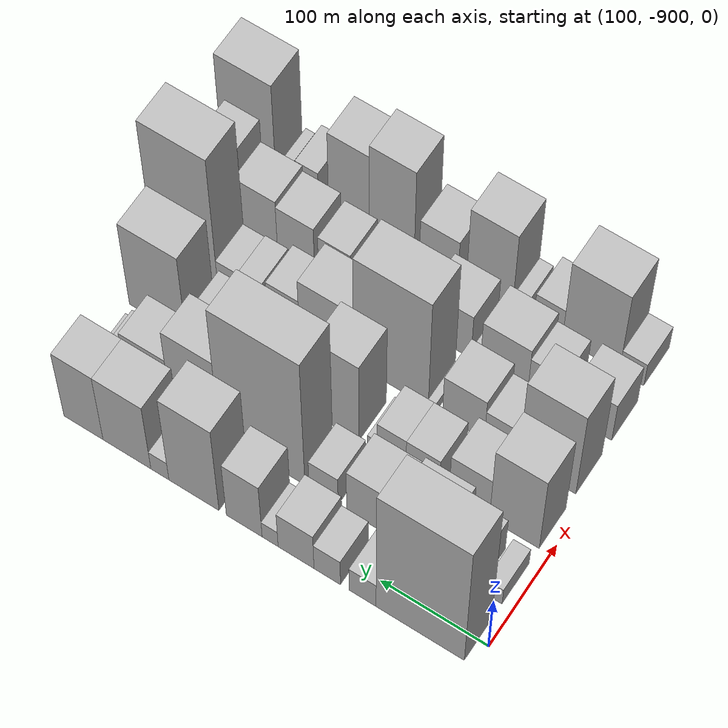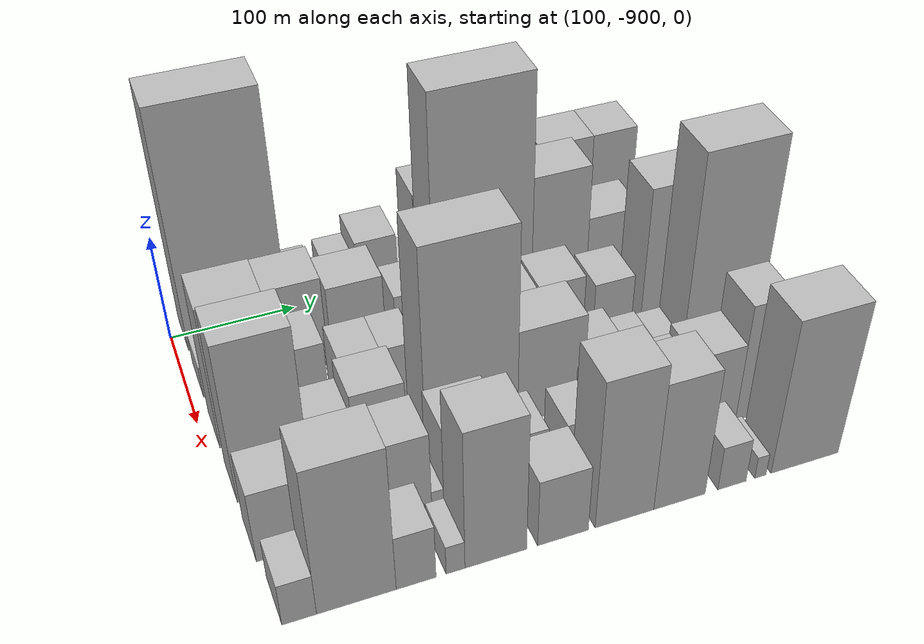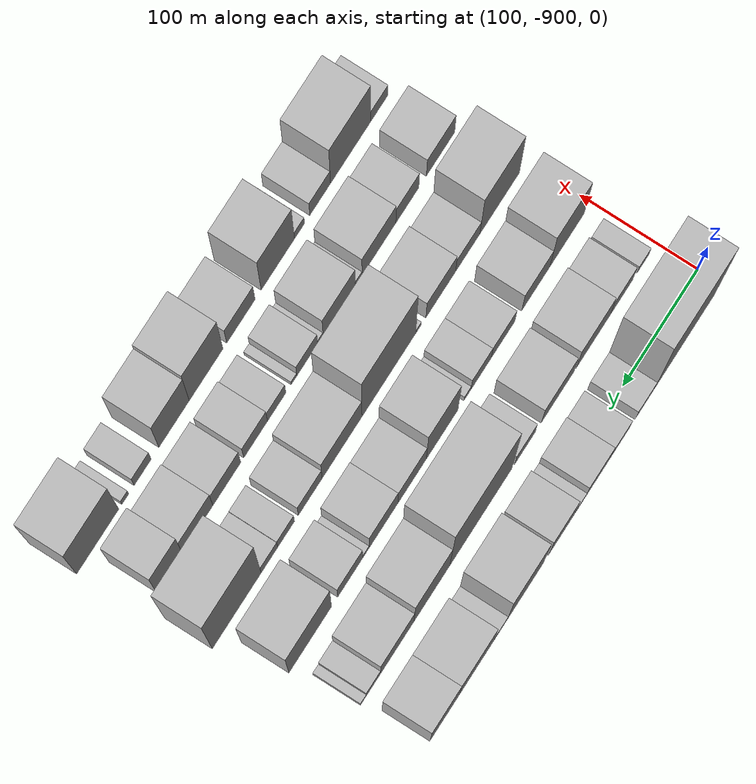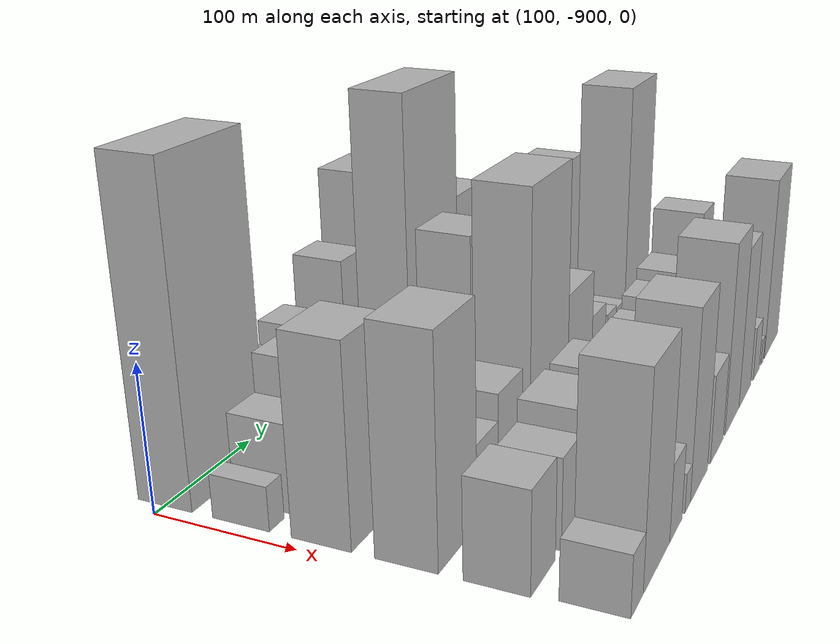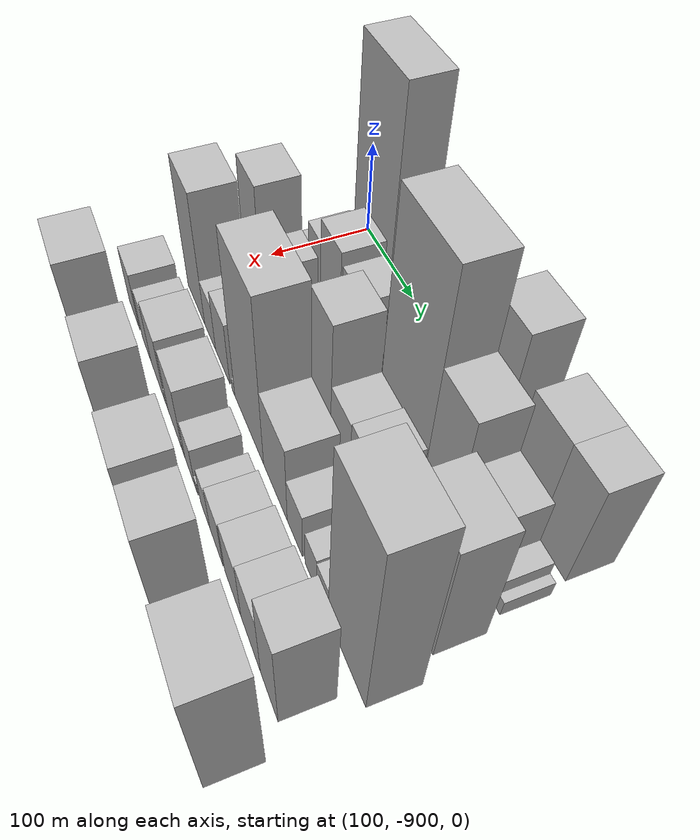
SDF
<sdf version="1.6">
 <world name="default">
  <model name="building_1">
   <static>1</static>
   <pose>100.0000 -849.4702 0 0.000000 0.000000 0.000000</pose>
   <link name="link">
    <pose>0 0 111.00 0 0 0</pose>
    <collision name="collision"><geometry><box><size>40.0000 81.0596 222.0000</size></box></geometry></collision>
    <visual name="visual">
     <cast_shadows>0</cast_shadows>
     <geometry><box><size>40.0000 81.0596 222.0000</size></box></geometry>
     <material>
      <script>
       <uri>model://HANNAS_wall/materials/scripts</uri>
       <uri>model://HANNAS_wall/materials/textures</uri>
       <name>vrc/HANNAS_wall</name>
      </script>
     </material>
    </visual>
   </link>
  </model>
  <model name="building_2">
   <static>1</static>
   <pose>100.0000 -796.4817 0 0.000000 0.000000 0.000000</pose>
   <link name="link">
    <pose>0 0 22.50 0 0 0</pose>
    <collision name="collision"><geometry><box><size>40.0000 24.9173 45.0000</size></box></geometry></collision>
    <visual name="visual">
     <cast_shadows>0</cast_shadows>
     <geometry><box><size>40.0000 24.9173 45.0000</size></box></geometry>
     <material>
      <script>
       <uri>model://HANNAS_wall/materials/scripts</uri>
       <uri>model://HANNAS_wall/materials/textures</uri>
       <name>vrc/HANNAS_wall</name>
      </script>
     </material>
    </visual>
   </link>
  </model>
  <model name="building_3">
   <static>1</static>
   <pose>100.0000 -763.6660 0 0.000000 0.000000 0.000000</pose>
   <link name="link">
    <pose>0 0 24.00 0 0 0</pose>
    <collision name="collision"><geometry><box><size>40.0000 24.7142 48.0000</size></box></geometry></collision>
    <visual name="visual">
     <cast_shadows>0</cast_shadows>
     <geometry><box><size>40.0000 24.7142 48.0000</size></box></geometry>
     <material>
      <script>
       <uri>model://HANNAS_wall/materials/scripts</uri>
       <uri>model://HANNAS_wall/materials/textures</uri>
       <name>vrc/HANNAS_wall</name>
      </script>
     </material>
    </visual>
   </link>
  </model>
  <model name="building_4">
   <static>1</static>
   <pose>100.0000 -734.4835 0 0.000000 0.000000 0.000000</pose>
   <link name="link">
    <pose>0 0 33.00 0 0 0</pose>
    <collision name="collision"><geometry><box><size>40.0000 33.6508 66.0000</size></box></geometry></collision>
    <visual name="visual">
     <cast_shadows>0</cast_shadows>
     <geometry><box><size>40.0000 33.6508 66.0000</size></box></geometry>
     <material>
      <script>
       <uri>model://HANNAS_wall/materials/scripts</uri>
       <uri>model://HANNAS_wall/materials/textures</uri>
       <name>vrc/HANNAS_wall</name>
      </script>
     </material>
    </visual>
   </link>
  </model>
  <model name="building_5">
   <static>1</static>
   <pose>100.0000 -710.1181 0 0.000000 0.000000 0.000000</pose>
   <link name="link">
    <pose>0 0 15.00 0 0 0</pose>
    <collision name="collision"><geometry><box><size>40.0000 15.0800 30.0000</size></box></geometry></collision>
    <visual name="visual">
     <cast_shadows>0</cast_shadows>
     <geometry><box><size>40.0000 15.0800 30.0000</size></box></geometry>
     <material>
      <script>
       <uri>model://HANNAS_wall/materials/scripts</uri>
       <uri>model://HANNAS_wall/materials/textures</uri>
       <name>vrc/HANNAS_wall</name>
      </script>
     </material>
    </visual>
   </link>
  </model>
  <model name="building_6">
   <static>1</static>
   <pose>100.0000 -685.6274 0 0.000000 0.000000 0.000000</pose>
   <link name="link">
    <pose>0 0 49.50 0 0 0</pose>
    <collision name="collision"><geometry><box><size>40.0000 33.9013 99.0000</size></box></geometry></collision>
    <visual name="visual">
     <cast_shadows>0</cast_shadows>
     <geometry><box><size>40.0000 33.9013 99.0000</size></box></geometry>
     <material>
      <script>
       <uri>model://HANNAS_wall/materials/scripts</uri>
       <uri>model://HANNAS_wall/materials/textures</uri>
       <name>vrc/HANNAS_wall</name>
      </script>
     </material>
    </visual>
   </link>
  </model>
  <model name="building_7">
   <static>1</static>
   <pose>100.0000 -637.7286 0 0.000000 0.000000 0.000000</pose>
   <link name="link">
    <pose>0 0 76.50 0 0 0</pose>
    <collision name="collision"><geometry><box><size>40.0000 47.8963 153.0000</size></box></geometry></collision>
    <visual name="visual">
     <cast_shadows>0</cast_shadows>
     <geometry><box><size>40.0000 47.8963 153.0000</size></box></geometry>
     <material>
      <script>
       <uri>model://HANNAS_wall/materials/scripts</uri>
       <uri>model://HANNAS_wall/materials/textures</uri>
       <name>vrc/HANNAS_wall</name>
      </script>
     </material>
    </visual>
   </link>
  </model>
  <model name="building_8">
   <static>1</static>
   <pose>100.0000 -605.0960 0 0.000000 0.000000 0.000000</pose>
   <link name="link">
    <pose>0 0 16.50 0 0 0</pose>
    <collision name="collision"><geometry><box><size>40.0000 17.3690 33.0000</size></box></geometry></collision>
    <visual name="visual">
     <cast_shadows>0</cast_shadows>
     <geometry><box><size>40.0000 17.3690 33.0000</size></box></geometry>
     <material>
      <script>
       <uri>model://HANNAS_wall/materials/scripts</uri>
       <uri>model://HANNAS_wall/materials/textures</uri>
       <name>vrc/HANNAS_wall</name>
      </script>
     </material>
    </visual>
   </link>
  </model>
  <model name="building_9">
   <static>1</static>
   <pose>100.0000 -573.2728 0 0.000000 0.000000 0.000000</pose>
   <link name="link">
    <pose>0 0 58.50 0 0 0</pose>
    <collision name="collision"><geometry><box><size>40.0000 46.2772 117.0000</size></box></geometry></collision>
    <visual name="visual">
     <cast_shadows>0</cast_shadows>
     <geometry><box><size>40.0000 46.2772 117.0000</size></box></geometry>
     <material>
      <script>
       <uri>model://HANNAS_wall/materials/scripts</uri>
       <uri>model://HANNAS_wall/materials/textures</uri>
       <name>vrc/HANNAS_wall</name>
      </script>
     </material>
    </visual>
   </link>
  </model>
  <model name="building_10">
   <static>1</static>
   <pose>100.0000 -531.0758 0 0.000000 0.000000 0.000000</pose>
   <link name="link">
    <pose>0 0 58.50 0 0 0</pose>
    <collision name="collision"><geometry><box><size>40.0000 38.1168 117.0000</size></box></geometry></collision>
    <visual name="visual">
     <cast_shadows>0</cast_shadows>
     <geometry><box><size>40.0000 38.1168 117.0000</size></box></geometry>
     <material>
      <script>
       <uri>model://HANNAS_wall/materials/scripts</uri>
       <uri>model://HANNAS_wall/materials/textures</uri>
       <name>vrc/HANNAS_wall</name>
      </script>
     </material>
    </visual>
   </link>
  </model>
  <model name="building_60">
   <static>1</static>
   <pose>155.0000 -882.0283 0 0.000000 0.000000 0.000000</pose>
   <link name="link">
    <pose>0 0 15.00 0 0 0</pose>
    <collision name="collision"><geometry><box><size>40.0000 15.9435 30.0000</size></box></geometry></collision>
    <visual name="visual">
     <cast_shadows>0</cast_shadows>
     <geometry><box><size>40.0000 15.9435 30.0000</size></box></geometry>
     <material>
      <script>
       <uri>model://HANNAS_wall/materials/scripts</uri>
       <uri>model://HANNAS_wall/materials/textures</uri>
       <name>vrc/HANNAS_wall</name>
      </script>
     </material>
    </visual>
   </link>
  </model>
  <model name="building_61">
   <static>1</static>
   <pose>155.0000 -852.9498 0 0.000000 0.000000 0.000000</pose>
   <link name="link">
    <pose>0 0 30.00 0 0 0</pose>
    <collision name="collision"><geometry><box><size>40.0000 30.2134 60.0000</size></box></geometry></collision>
    <visual name="visual">
     <cast_shadows>0</cast_shadows>
     <geometry><box><size>40.0000 30.2134 60.0000</size></box></geometry>
     <material>
      <script>
       <uri>model://HANNAS_wall/materials/scripts</uri>
       <uri>model://HANNAS_wall/materials/textures</uri>
       <name>vrc/HANNAS_wall</name>
      </script>
     </material>
    </visual>
   </link>
  </model>
  <model name="building_62">
   <static>1</static>
   <pose>155.0000 -815.1934 0 0.000000 0.000000 0.000000</pose>
   <link name="link">
    <pose>0 0 43.50 0 0 0</pose>
    <collision name="collision"><geometry><box><size>40.0000 45.2995 87.0000</size></box></geometry></collision>
    <visual name="visual">
     <cast_shadows>0</cast_shadows>
     <geometry><box><size>40.0000 45.2995 87.0000</size></box></geometry>
     <material>
      <script>
       <uri>model://HANNAS_wall/materials/scripts</uri>
       <uri>model://HANNAS_wall/materials/textures</uri>
       <name>vrc/HANNAS_wall</name>
      </script>
     </material>
    </visual>
   </link>
  </model>
  <model name="building_63">
   <static>1</static>
   <pose>155.0000 -767.6770 0 0.000000 0.000000 0.000000</pose>
   <link name="link">
    <pose>0 0 37.50 0 0 0</pose>
    <collision name="collision"><geometry><box><size>40.0000 43.7331 75.0000</size></box></geometry></collision>
    <visual name="visual">
     <cast_shadows>0</cast_shadows>
     <geometry><box><size>40.0000 43.7331 75.0000</size></box></geometry>
     <material>
      <script>
       <uri>model://HANNAS_wall/materials/scripts</uri>
       <uri>model://HANNAS_wall/materials/textures</uri>
       <name>vrc/HANNAS_wall</name>
      </script>
     </material>
    </visual>
   </link>
  </model>
  <model name="building_64">
   <static>1</static>
   <pose>155.0000 -724.0983 0 0.000000 0.000000 0.000000</pose>
   <link name="link">
    <pose>0 0 25.50 0 0 0</pose>
    <collision name="collision"><geometry><box><size>40.0000 27.4242 51.0000</size></box></geometry></collision>
    <visual name="visual">
     <cast_shadows>0</cast_shadows>
     <geometry><box><size>40.0000 27.4242 51.0000</size></box></geometry>
     <material>
      <script>
       <uri>model://HANNAS_wall/materials/scripts</uri>
       <uri>model://HANNAS_wall/materials/textures</uri>
       <name>vrc/HANNAS_wall</name>
      </script>
     </material>
    </visual>
   </link>
  </model>
  <model name="building_65">
   <static>1</static>
   <pose>155.0000 -665.3997 0 0.000000 0.000000 0.000000</pose>
   <link name="link">
    <pose>0 0 112.50 0 0 0</pose>
    <collision name="collision"><geometry><box><size>40.0000 81.9730 225.0000</size></box></geometry></collision>
    <visual name="visual">
     <cast_shadows>0</cast_shadows>
     <geometry><box><size>40.0000 81.9730 225.0000</size></box></geometry>
     <material>
      <script>
       <uri>model://HANNAS_wall/materials/scripts</uri>
       <uri>model://HANNAS_wall/materials/textures</uri>
       <name>vrc/HANNAS_wall</name>
      </script>
     </material>
    </visual>
   </link>
  </model>
  <model name="building_66">
   <static>1</static>
   <pose>155.0000 -600.7089 0 0.000000 0.000000 0.000000</pose>
   <link name="link">
    <pose>0 0 66.00 0 0 0</pose>
    <collision name="collision"><geometry><box><size>40.0000 47.4087 132.0000</size></box></geometry></collision>
    <visual name="visual">
     <cast_shadows>0</cast_shadows>
     <geometry><box><size>40.0000 47.4087 132.0000</size></box></geometry>
     <material>
      <script>
       <uri>model://HANNAS_wall/materials/scripts</uri>
       <uri>model://HANNAS_wall/materials/textures</uri>
       <name>vrc/HANNAS_wall</name>
      </script>
     </material>
    </visual>
   </link>
  </model>
  <model name="building_67">
   <static>1</static>
   <pose>155.0000 -555.1314 0 0.000000 0.000000 0.000000</pose>
   <link name="link">
    <pose>0 0 40.50 0 0 0</pose>
    <collision name="collision"><geometry><box><size>40.0000 43.7464 81.0000</size></box></geometry></collision>
    <visual name="visual">
     <cast_shadows>0</cast_shadows>
     <geometry><box><size>40.0000 43.7464 81.0000</size></box></geometry>
     <material>
      <script>
       <uri>model://HANNAS_wall/materials/scripts</uri>
       <uri>model://HANNAS_wall/materials/textures</uri>
       <name>vrc/HANNAS_wall</name>
      </script>
     </material>
    </visual>
   </link>
  </model>
  <model name="building_68">
   <static>1</static>
   <pose>155.0000 -523.9585 0 0.000000 0.000000 0.000000</pose>
   <link name="link">
    <pose>0 0 16.50 0 0 0</pose>
    <collision name="collision"><geometry><box><size>40.0000 18.5993 33.0000</size></box></geometry></collision>
    <visual name="visual">
     <cast_shadows>0</cast_shadows>
     <geometry><box><size>40.0000 18.5993 33.0000</size></box></geometry>
     <material>
      <script>
       <uri>model://HANNAS_wall/materials/scripts</uri>
       <uri>model://HANNAS_wall/materials/textures</uri>
       <name>vrc/HANNAS_wall</name>
      </script>
     </material>
    </visual>
   </link>
  </model>
  <model name="building_69">
   <static>1</static>
   <pose>155.0000 -510.8454 0 0.000000 0.000000 0.000000</pose>
   <link name="link">
    <pose>0 0 9.00 0 0 0</pose>
    <collision name="collision"><geometry><box><size>40.0000 7.6270 18.0000</size></box></geometry></collision>
    <visual name="visual">
     <cast_shadows>0</cast_shadows>
     <geometry><box><size>40.0000 7.6270 18.0000</size></box></geometry>
     <material>
      <script>
       <uri>model://HANNAS_wall/materials/scripts</uri>
       <uri>model://HANNAS_wall/materials/textures</uri>
       <name>vrc/HANNAS_wall</name>
      </script>
     </material>
    </visual>
   </link>
  </model>
  <model name="building_112">
   <static>1</static>
   <pose>210.0000 -867.0204 0 0.000000 0.000000 0.000000</pose>
   <link name="link">
    <pose>0 0 66.00 0 0 0</pose>
    <collision name="collision"><geometry><box><size>40.0000 45.9593 132.0000</size></box></geometry></collision>
    <visual name="visual">
     <cast_shadows>0</cast_shadows>
     <geometry><box><size>40.0000 45.9593 132.0000</size></box></geometry>
     <material>
      <script>
       <uri>model://HANNAS_wall/materials/scripts</uri>
       <uri>model://HANNAS_wall/materials/textures</uri>
       <name>vrc/HANNAS_wall</name>
      </script>
     </material>
    </visual>
   </link>
  </model>
  <model name="building_113">
   <static>1</static>
   <pose>210.0000 -825.2384 0 0.000000 0.000000 0.000000</pose>
   <link name="link">
    <pose>0 0 37.50 0 0 0</pose>
    <collision name="collision"><geometry><box><size>40.0000 37.6047 75.0000</size></box></geometry></collision>
    <visual name="visual">
     <cast_shadows>0</cast_shadows>
     <geometry><box><size>40.0000 37.6047 75.0000</size></box></geometry>
     <material>
      <script>
       <uri>model://HANNAS_wall/materials/scripts</uri>
       <uri>model://HANNAS_wall/materials/textures</uri>
       <name>vrc/HANNAS_wall</name>
      </script>
     </material>
    </visual>
   </link>
  </model>
  <model name="building_114">
   <static>1</static>
   <pose>210.0000 -781.6343 0 0.000000 0.000000 0.000000</pose>
   <link name="link">
    <pose>0 0 27.00 0 0 0</pose>
    <collision name="collision"><geometry><box><size>40.0000 31.6035 54.0000</size></box></geometry></collision>
    <visual name="visual">
     <cast_shadows>0</cast_shadows>
     <geometry><box><size>40.0000 31.6035 54.0000</size></box></geometry>
     <material>
      <script>
       <uri>model://HANNAS_wall/materials/scripts</uri>
       <uri>model://HANNAS_wall/materials/textures</uri>
       <name>vrc/HANNAS_wall</name>
      </script>
     </material>
    </visual>
   </link>
  </model>
  <model name="building_115">
   <static>1</static>
   <pose>210.0000 -752.2798 0 0.000000 0.000000 0.000000</pose>
   <link name="link">
    <pose>0 0 27.00 0 0 0</pose>
    <collision name="collision"><geometry><box><size>40.0000 27.1055 54.0000</size></box></geometry></collision>
    <visual name="visual">
     <cast_shadows>0</cast_shadows>
     <geometry><box><size>40.0000 27.1055 54.0000</size></box></geometry>
     <material>
      <script>
       <uri>model://HANNAS_wall/materials/scripts</uri>
       <uri>model://HANNAS_wall/materials/textures</uri>
       <name>vrc/HANNAS_wall</name>
      </script>
     </material>
    </visual>
   </link>
  </model>
  <model name="building_116">
   <static>1</static>
   <pose>210.0000 -734.1726 0 0.000000 0.000000 0.000000</pose>
   <link name="link">
    <pose>0 0 10.50 0 0 0</pose>
    <collision name="collision"><geometry><box><size>40.0000 9.1089 21.0000</size></box></geometry></collision>
    <visual name="visual">
     <cast_shadows>0</cast_shadows>
     <geometry><box><size>40.0000 9.1089 21.0000</size></box></geometry>
     <material>
      <script>
       <uri>model://HANNAS_wall/materials/scripts</uri>
       <uri>model://HANNAS_wall/materials/textures</uri>
       <name>vrc/HANNAS_wall</name>
      </script>
     </material>
    </visual>
   </link>
  </model>
  <model name="building_117">
   <static>1</static>
   <pose>210.0000 -700.6305 0 0.000000 0.000000 0.000000</pose>
   <link name="link">
    <pose>0 0 69.00 0 0 0</pose>
    <collision name="collision"><geometry><box><size>40.0000 41.9753 138.0000</size></box></geometry></collision>
    <visual name="visual">
     <cast_shadows>0</cast_shadows>
     <geometry><box><size>40.0000 41.9753 138.0000</size></box></geometry>
     <material>
      <script>
       <uri>model://HANNAS_wall/materials/scripts</uri>
       <uri>model://HANNAS_wall/materials/textures</uri>
       <name>vrc/HANNAS_wall</name>
      </script>
     </material>
    </visual>
   </link>
  </model>
  <model name="building_118">
   <static>1</static>
   <pose>210.0000 -660.8304 0 0.000000 0.000000 0.000000</pose>
   <link name="link">
    <pose>0 0 36.00 0 0 0</pose>
    <collision name="collision"><geometry><box><size>40.0000 37.6250 72.0000</size></box></geometry></collision>
    <visual name="visual">
     <cast_shadows>0</cast_shadows>
     <geometry><box><size>40.0000 37.6250 72.0000</size></box></geometry>
     <material>
      <script>
       <uri>model://HANNAS_wall/materials/scripts</uri>
       <uri>model://HANNAS_wall/materials/textures</uri>
       <name>vrc/HANNAS_wall</name>
      </script>
     </material>
    </visual>
   </link>
  </model>
  <model name="building_119">
   <static>1</static>
   <pose>210.0000 -623.1303 0 0.000000 0.000000 0.000000</pose>
   <link name="link">
    <pose>0 0 37.50 0 0 0</pose>
    <collision name="collision"><geometry><box><size>40.0000 37.7752 75.0000</size></box></geometry></collision>
    <visual name="visual">
     <cast_shadows>0</cast_shadows>
     <geometry><box><size>40.0000 37.7752 75.0000</size></box></geometry>
     <material>
      <script>
       <uri>model://HANNAS_wall/materials/scripts</uri>
       <uri>model://HANNAS_wall/materials/textures</uri>
       <name>vrc/HANNAS_wall</name>
      </script>
     </material>
    </visual>
   </link>
  </model>
  <model name="building_120">
   <static>1</static>
   <pose>210.0000 -599.9758 0 0.000000 0.000000 0.000000</pose>
   <link name="link">
    <pose>0 0 9.00 0 0 0</pose>
    <collision name="collision"><geometry><box><size>40.0000 8.5337 18.0000</size></box></geometry></collision>
    <visual name="visual">
     <cast_shadows>0</cast_shadows>
     <geometry><box><size>40.0000 8.5337 18.0000</size></box></geometry>
     <material>
      <script>
       <uri>model://HANNAS_wall/materials/scripts</uri>
       <uri>model://HANNAS_wall/materials/textures</uri>
       <name>vrc/HANNAS_wall</name>
      </script>
     </material>
    </visual>
   </link>
  </model>
  <model name="building_121">
   <static>1</static>
   <pose>210.0000 -579.2634 0 0.000000 0.000000 0.000000</pose>
   <link name="link">
    <pose>0 0 31.50 0 0 0</pose>
    <collision name="collision"><geometry><box><size>40.0000 32.8912 63.0000</size></box></geometry></collision>
    <visual name="visual">
     <cast_shadows>0</cast_shadows>
     <geometry><box><size>40.0000 32.8912 63.0000</size></box></geometry>
     <material>
      <script>
       <uri>model://HANNAS_wall/materials/scripts</uri>
       <uri>model://HANNAS_wall/materials/textures</uri>
       <name>vrc/HANNAS_wall</name>
      </script>
     </material>
    </visual>
   </link>
  </model>
  <model name="building_122">
   <static>1</static>
   <pose>210.0000 -526.8572 0 0.000000 0.000000 0.000000</pose>
   <link name="link">
    <pose>0 0 70.50 0 0 0</pose>
    <collision name="collision"><geometry><box><size>40.0000 55.9212 141.0000</size></box></geometry></collision>
    <visual name="visual">
     <cast_shadows>0</cast_shadows>
     <geometry><box><size>40.0000 55.9212 141.0000</size></box></geometry>
     <material>
      <script>
       <uri>model://HANNAS_wall/materials/scripts</uri>
       <uri>model://HANNAS_wall/materials/textures</uri>
       <name>vrc/HANNAS_wall</name>
      </script>
     </material>
    </visual>
   </link>
  </model>
  <model name="building_164">
   <static>1</static>
   <pose>265.0000 -863.5892 0 0.000000 0.000000 0.000000</pose>
   <link name="link">
    <pose>0 0 73.50 0 0 0</pose>
    <collision name="collision"><geometry><box><size>40.0000 52.8216 147.0000</size></box></geometry></collision>
    <visual name="visual">
     <cast_shadows>0</cast_shadows>
     <geometry><box><size>40.0000 52.8216 147.0000</size></box></geometry>
     <material>
      <script>
       <uri>model://HANNAS_wall/materials/scripts</uri>
       <uri>model://HANNAS_wall/materials/textures</uri>
       <name>vrc/HANNAS_wall</name>
      </script>
     </material>
    </visual>
   </link>
  </model>
  <model name="building_165">
   <static>1</static>
   <pose>265.0000 -821.0068 0 0.000000 0.000000 0.000000</pose>
   <link name="link">
    <pose>0 0 27.00 0 0 0</pose>
    <collision name="collision"><geometry><box><size>40.0000 32.3433 54.0000</size></box></geometry></collision>
    <visual name="visual">
     <cast_shadows>0</cast_shadows>
     <geometry><box><size>40.0000 32.3433 54.0000</size></box></geometry>
     <material>
      <script>
       <uri>model://HANNAS_wall/materials/scripts</uri>
       <uri>model://HANNAS_wall/materials/textures</uri>
       <name>vrc/HANNAS_wall</name>
      </script>
     </material>
    </visual>
   </link>
  </model>
  <model name="building_166">
   <static>1</static>
   <pose>265.0000 -785.0643 0 0.000000 0.000000 0.000000</pose>
   <link name="link">
    <pose>0 0 36.00 0 0 0</pose>
    <collision name="collision"><geometry><box><size>40.0000 39.5417 72.0000</size></box></geometry></collision>
    <visual name="visual">
     <cast_shadows>0</cast_shadows>
     <geometry><box><size>40.0000 39.5417 72.0000</size></box></geometry>
     <material>
      <script>
       <uri>model://HANNAS_wall/materials/scripts</uri>
       <uri>model://HANNAS_wall/materials/textures</uri>
       <name>vrc/HANNAS_wall</name>
      </script>
     </material>
    </visual>
   </link>
  </model>
  <model name="building_167">
   <static>1</static>
   <pose>265.0000 -755.5915 0 0.000000 0.000000 0.000000</pose>
   <link name="link">
    <pose>0 0 7.50 0 0 0</pose>
    <collision name="collision"><geometry><box><size>40.0000 7.4040 15.0000</size></box></geometry></collision>
    <visual name="visual">
     <cast_shadows>0</cast_shadows>
     <geometry><box><size>40.0000 7.4040 15.0000</size></box></geometry>
     <material>
      <script>
       <uri>model://HANNAS_wall/materials/scripts</uri>
       <uri>model://HANNAS_wall/materials/textures</uri>
       <name>vrc/HANNAS_wall</name>
      </script>
     </material>
    </visual>
   </link>
  </model>
  <model name="building_168">
   <static>1</static>
   <pose>265.0000 -716.2300 0 0.000000 0.000000 0.000000</pose>
   <link name="link">
    <pose>0 0 93.00 0 0 0</pose>
    <collision name="collision"><geometry><box><size>40.0000 71.3191 186.0000</size></box></geometry></collision>
    <visual name="visual">
     <cast_shadows>0</cast_shadows>
     <geometry><box><size>40.0000 71.3191 186.0000</size></box></geometry>
     <material>
      <script>
       <uri>model://HANNAS_wall/materials/scripts</uri>
       <uri>model://HANNAS_wall/materials/textures</uri>
       <name>vrc/HANNAS_wall</name>
      </script>
     </material>
    </visual>
   </link>
  </model>
  <model name="building_169">
   <static>1</static>
   <pose>265.0000 -654.2969 0 0.000000 0.000000 0.000000</pose>
   <link name="link">
    <pose>0 0 45.00 0 0 0</pose>
    <collision name="collision"><geometry><box><size>40.0000 52.5471 90.0000</size></box></geometry></collision>
    <visual name="visual">
     <cast_shadows>0</cast_shadows>
     <geometry><box><size>40.0000 52.5471 90.0000</size></box></geometry>
     <material>
      <script>
       <uri>model://HANNAS_wall/materials/scripts</uri>
       <uri>model://HANNAS_wall/materials/textures</uri>
       <name>vrc/HANNAS_wall</name>
      </script>
     </material>
    </visual>
   </link>
  </model>
  <model name="building_170">
   <static>1</static>
   <pose>265.0000 -612.3860 0 0.000000 0.000000 0.000000</pose>
   <link name="link">
    <pose>0 0 27.00 0 0 0</pose>
    <collision name="collision"><geometry><box><size>40.0000 31.2746 54.0000</size></box></geometry></collision>
    <visual name="visual">
     <cast_shadows>0</cast_shadows>
     <geometry><box><size>40.0000 31.2746 54.0000</size></box></geometry>
     <material>
      <script>
       <uri>model://HANNAS_wall/materials/scripts</uri>
       <uri>model://HANNAS_wall/materials/textures</uri>
       <name>vrc/HANNAS_wall</name>
      </script>
     </material>
    </visual>
   </link>
  </model>
  <model name="building_171">
   <static>1</static>
   <pose>265.0000 -580.7280 0 0.000000 0.000000 0.000000</pose>
   <link name="link">
    <pose>0 0 21.00 0 0 0</pose>
    <collision name="collision"><geometry><box><size>40.0000 22.0416 42.0000</size></box></geometry></collision>
    <visual name="visual">
     <cast_shadows>0</cast_shadows>
     <geometry><box><size>40.0000 22.0416 42.0000</size></box></geometry>
     <material>
      <script>
       <uri>model://HANNAS_wall/materials/scripts</uri>
       <uri>model://HANNAS_wall/materials/textures</uri>
       <name>vrc/HANNAS_wall</name>
      </script>
     </material>
    </visual>
   </link>
  </model>
  <model name="building_172">
   <static>1</static>
   <pose>265.0000 -558.8055 0 0.000000 0.000000 0.000000</pose>
   <link name="link">
    <pose>0 0 19.50 0 0 0</pose>
    <collision name="collision"><geometry><box><size>40.0000 21.8033 39.0000</size></box></geometry></collision>
    <visual name="visual">
     <cast_shadows>0</cast_shadows>
     <geometry><box><size>40.0000 21.8033 39.0000</size></box></geometry>
     <material>
      <script>
       <uri>model://HANNAS_wall/materials/scripts</uri>
       <uri>model://HANNAS_wall/materials/textures</uri>
       <name>vrc/HANNAS_wall</name>
      </script>
     </material>
    </visual>
   </link>
  </model>
  <model name="building_173">
   <static>1</static>
   <pose>265.0000 -515.9631 0 0.000000 0.000000 0.000000</pose>
   <link name="link">
    <pose>0 0 103.50 0 0 0</pose>
    <collision name="collision"><geometry><box><size>40.0000 63.8814 207.0000</size></box></geometry></collision>
    <visual name="visual">
     <cast_shadows>0</cast_shadows>
     <geometry><box><size>40.0000 63.8814 207.0000</size></box></geometry>
     <material>
      <script>
       <uri>model://HANNAS_wall/materials/scripts</uri>
       <uri>model://HANNAS_wall/materials/textures</uri>
       <name>vrc/HANNAS_wall</name>
      </script>
     </material>
    </visual>
   </link>
  </model>
  <model name="building_220">
   <static>1</static>
   <pose>320.0000 -871.0660 0 0.000000 0.000000 0.000000</pose>
   <link name="link">
    <pose>0 0 33.00 0 0 0</pose>
    <collision name="collision"><geometry><box><size>40.0000 37.8679 66.0000</size></box></geometry></collision>
    <visual name="visual">
     <cast_shadows>0</cast_shadows>
     <geometry><box><size>40.0000 37.8679 66.0000</size></box></geometry>
     <material>
      <script>
       <uri>model://HANNAS_wall/materials/scripts</uri>
       <uri>model://HANNAS_wall/materials/textures</uri>
       <name>vrc/HANNAS_wall</name>
      </script>
     </material>
    </visual>
   </link>
  </model>
  <model name="building_221">
   <static>1</static>
   <pose>320.0000 -826.7842 0 0.000000 0.000000 0.000000</pose>
   <link name="link">
    <pose>0 0 30.00 0 0 0</pose>
    <collision name="collision"><geometry><box><size>40.0000 30.6957 60.0000</size></box></geometry></collision>
    <visual name="visual">
     <cast_shadows>0</cast_shadows>
     <geometry><box><size>40.0000 30.6957 60.0000</size></box></geometry>
     <material>
      <script>
       <uri>model://HANNAS_wall/materials/scripts</uri>
       <uri>model://HANNAS_wall/materials/textures</uri>
       <name>vrc/HANNAS_wall</name>
      </script>
     </material>
    </visual>
   </link>
  </model>
  <model name="building_222">
   <static>1</static>
   <pose>320.0000 -788.9957 0 0.000000 0.000000 0.000000</pose>
   <link name="link">
    <pose>0 0 37.50 0 0 0</pose>
    <collision name="collision"><geometry><box><size>40.0000 44.8815 75.0000</size></box></geometry></collision>
    <visual name="visual">
     <cast_shadows>0</cast_shadows>
     <geometry><box><size>40.0000 44.8815 75.0000</size></box></geometry>
     <material>
      <script>
       <uri>model://HANNAS_wall/materials/scripts</uri>
       <uri>model://HANNAS_wall/materials/textures</uri>
       <name>vrc/HANNAS_wall</name>
      </script>
     </material>
    </visual>
   </link>
  </model>
  <model name="building_223">
   <static>1</static>
   <pose>320.0000 -762.1293 0 0.000000 0.000000 0.000000</pose>
   <link name="link">
    <pose>0 0 9.00 0 0 0</pose>
    <collision name="collision"><geometry><box><size>40.0000 8.8513 18.0000</size></box></geometry></collision>
    <visual name="visual">
     <cast_shadows>0</cast_shadows>
     <geometry><box><size>40.0000 8.8513 18.0000</size></box></geometry>
     <material>
      <script>
       <uri>model://HANNAS_wall/materials/scripts</uri>
       <uri>model://HANNAS_wall/materials/textures</uri>
       <name>vrc/HANNAS_wall</name>
      </script>
     </material>
    </visual>
   </link>
  </model>
  <model name="building_224">
   <static>1</static>
   <pose>320.0000 -736.3522 0 0.000000 0.000000 0.000000</pose>
   <link name="link">
    <pose>0 0 37.50 0 0 0</pose>
    <collision name="collision"><geometry><box><size>40.0000 42.7029 75.0000</size></box></geometry></collision>
    <visual name="visual">
     <cast_shadows>0</cast_shadows>
     <geometry><box><size>40.0000 42.7029 75.0000</size></box></geometry>
     <material>
      <script>
       <uri>model://HANNAS_wall/materials/scripts</uri>
       <uri>model://HANNAS_wall/materials/textures</uri>
       <name>vrc/HANNAS_wall</name>
      </script>
     </material>
    </visual>
   </link>
  </model>
  <model name="building_225">
   <static>1</static>
   <pose>320.0000 -711.4095 0 0.000000 0.000000 0.000000</pose>
   <link name="link">
    <pose>0 0 7.50 0 0 0</pose>
    <collision name="collision"><geometry><box><size>40.0000 7.1824 15.0000</size></box></geometry></collision>
    <visual name="visual">
     <cast_shadows>0</cast_shadows>
     <geometry><box><size>40.0000 7.1824 15.0000</size></box></geometry>
     <material>
      <script>
       <uri>model://HANNAS_wall/materials/scripts</uri>
       <uri>model://HANNAS_wall/materials/textures</uri>
       <name>vrc/HANNAS_wall</name>
      </script>
     </material>
    </visual>
   </link>
  </model>
  <model name="building_226">
   <static>1</static>
   <pose>320.0000 -694.0550 0 0.000000 0.000000 0.000000</pose>
   <link name="link">
    <pose>0 0 24.00 0 0 0</pose>
    <collision name="collision"><geometry><box><size>40.0000 27.5266 48.0000</size></box></geometry></collision>
    <visual name="visual">
     <cast_shadows>0</cast_shadows>
     <geometry><box><size>40.0000 27.5266 48.0000</size></box></geometry>
     <material>
      <script>
       <uri>model://HANNAS_wall/materials/scripts</uri>
       <uri>model://HANNAS_wall/materials/textures</uri>
       <name>vrc/HANNAS_wall</name>
      </script>
     </material>
    </visual>
   </link>
  </model>
  <model name="building_227">
   <static>1</static>
   <pose>320.0000 -676.5863 0 0.000000 0.000000 0.000000</pose>
   <link name="link">
    <pose>0 0 7.50 0 0 0</pose>
    <collision name="collision"><geometry><box><size>40.0000 7.4108 15.0000</size></box></geometry></collision>
    <visual name="visual">
     <cast_shadows>0</cast_shadows>
     <geometry><box><size>40.0000 7.4108 15.0000</size></box></geometry>
     <material>
      <script>
       <uri>model://HANNAS_wall/materials/scripts</uri>
       <uri>model://HANNAS_wall/materials/textures</uri>
       <name>vrc/HANNAS_wall</name>
      </script>
     </material>
    </visual>
   </link>
  </model>
  <model name="building_228">
   <static>1</static>
   <pose>320.0000 -653.7818 0 0.000000 0.000000 0.000000</pose>
   <link name="link">
    <pose>0 0 22.50 0 0 0</pose>
    <collision name="collision"><geometry><box><size>40.0000 24.1982 45.0000</size></box></geometry></collision>
    <visual name="visual">
     <cast_shadows>0</cast_shadows>
     <geometry><box><size>40.0000 24.1982 45.0000</size></box></geometry>
     <material>
      <script>
       <uri>model://HANNAS_wall/materials/scripts</uri>
       <uri>model://HANNAS_wall/materials/textures</uri>
       <name>vrc/HANNAS_wall</name>
      </script>
     </material>
    </visual>
   </link>
  </model>
  <model name="building_229">
   <static>1</static>
   <pose>320.0000 -626.0792 0 0.000000 0.000000 0.000000</pose>
   <link name="link">
    <pose>0 0 28.50 0 0 0</pose>
    <collision name="collision"><geometry><box><size>40.0000 31.2071 57.0000</size></box></geometry></collision>
    <visual name="visual">
     <cast_shadows>0</cast_shadows>
     <geometry><box><size>40.0000 31.2071 57.0000</size></box></geometry>
     <material>
      <script>
       <uri>model://HANNAS_wall/materials/scripts</uri>
       <uri>model://HANNAS_wall/materials/textures</uri>
       <name>vrc/HANNAS_wall</name>
      </script>
     </material>
    </visual>
   </link>
  </model>
  <model name="building_230">
   <static>1</static>
   <pose>320.0000 -588.2155 0 0.000000 0.000000 0.000000</pose>
   <link name="link">
    <pose>0 0 33.00 0 0 0</pose>
    <collision name="collision"><geometry><box><size>40.0000 36.5202 66.0000</size></box></geometry></collision>
    <visual name="visual">
     <cast_shadows>0</cast_shadows>
     <geometry><box><size>40.0000 36.5202 66.0000</size></box></geometry>
     <material>
      <script>
       <uri>model://HANNAS_wall/materials/scripts</uri>
       <uri>model://HANNAS_wall/materials/textures</uri>
       <name>vrc/HANNAS_wall</name>
      </script>
     </material>
    </visual>
   </link>
  </model>
  <model name="building_231">
   <static>1</static>
   <pose>320.0000 -549.8197 0 0.000000 0.000000 0.000000</pose>
   <link name="link">
    <pose>0 0 37.50 0 0 0</pose>
    <collision name="collision"><geometry><box><size>40.0000 40.2715 75.0000</size></box></geometry></collision>
    <visual name="visual">
     <cast_shadows>0</cast_shadows>
     <geometry><box><size>40.0000 40.2715 75.0000</size></box></geometry>
     <material>
      <script>
       <uri>model://HANNAS_wall/materials/scripts</uri>
       <uri>model://HANNAS_wall/materials/textures</uri>
       <name>vrc/HANNAS_wall</name>
      </script>
     </material>
    </visual>
   </link>
  </model>
  <model name="building_232">
   <static>1</static>
   <pose>320.0000 -512.9352 0 0.000000 0.000000 0.000000</pose>
   <link name="link">
    <pose>0 0 55.50 0 0 0</pose>
    <collision name="collision"><geometry><box><size>40.0000 33.4975 111.0000</size></box></geometry></collision>
    <visual name="visual">
     <cast_shadows>0</cast_shadows>
     <geometry><box><size>40.0000 33.4975 111.0000</size></box></geometry>
     <material>
      <script>
       <uri>model://HANNAS_wall/materials/scripts</uri>
       <uri>model://HANNAS_wall/materials/textures</uri>
       <name>vrc/HANNAS_wall</name>
      </script>
     </material>
    </visual>
   </link>
  </model>
  <model name="building_274">
   <static>1</static>
   <pose>375.0000 -875.5707 0 0.000000 0.000000 0.000000</pose>
   <link name="link">
    <pose>0 0 19.50 0 0 0</pose>
    <collision name="collision"><geometry><box><size>40.0000 22.8587 39.0000</size></box></geometry></collision>
    <visual name="visual">
     <cast_shadows>0</cast_shadows>
     <geometry><box><size>40.0000 22.8587 39.0000</size></box></geometry>
     <material>
      <script>
       <uri>model://HANNAS_wall/materials/scripts</uri>
       <uri>model://HANNAS_wall/materials/textures</uri>
       <name>vrc/HANNAS_wall</name>
      </script>
     </material>
    </visual>
   </link>
  </model>
  <model name="building_275">
   <static>1</static>
   <pose>375.0000 -837.3022 0 0.000000 0.000000 0.000000</pose>
   <link name="link">
    <pose>0 0 67.50 0 0 0</pose>
    <collision name="collision"><geometry><box><size>40.0000 53.6782 135.0000</size></box></geometry></collision>
    <visual name="visual">
     <cast_shadows>0</cast_shadows>
     <geometry><box><size>40.0000 53.6782 135.0000</size></box></geometry>
     <material>
      <script>
       <uri>model://HANNAS_wall/materials/scripts</uri>
       <uri>model://HANNAS_wall/materials/textures</uri>
       <name>vrc/HANNAS_wall</name>
      </script>
     </material>
    </visual>
   </link>
  </model>
  <model name="building_276">
   <static>1</static>
   <pose>375.0000 -796.7164 0 0.000000 0.000000 0.000000</pose>
   <link name="link">
    <pose>0 0 25.50 0 0 0</pose>
    <collision name="collision"><geometry><box><size>40.0000 27.4935 51.0000</size></box></geometry></collision>
    <visual name="visual">
     <cast_shadows>0</cast_shadows>
     <geometry><box><size>40.0000 27.4935 51.0000</size></box></geometry>
     <material>
      <script>
       <uri>model://HANNAS_wall/materials/scripts</uri>
       <uri>model://HANNAS_wall/materials/textures</uri>
       <name>vrc/HANNAS_wall</name>
      </script>
     </material>
    </visual>
   </link>
  </model>
  <model name="building_277">
   <static>1</static>
   <pose>375.0000 -769.3497 0 0.000000 0.000000 0.000000</pose>
   <link name="link">
    <pose>0 0 13.50 0 0 0</pose>
    <collision name="collision"><geometry><box><size>40.0000 13.2399 27.0000</size></box></geometry></collision>
    <visual name="visual">
     <cast_shadows>0</cast_shadows>
     <geometry><box><size>40.0000 13.2399 27.0000</size></box></geometry>
     <material>
      <script>
       <uri>model://HANNAS_wall/materials/scripts</uri>
       <uri>model://HANNAS_wall/materials/textures</uri>
       <name>vrc/HANNAS_wall</name>
      </script>
     </material>
    </visual>
   </link>
  </model>
  <model name="building_278">
   <static>1</static>
   <pose>375.0000 -740.6784 0 0.000000 0.000000 0.000000</pose>
   <link name="link">
    <pose>0 0 64.50 0 0 0</pose>
    <collision name="collision"><geometry><box><size>40.0000 44.1025 129.0000</size></box></geometry></collision>
    <visual name="visual">
     <cast_shadows>0</cast_shadows>
     <geometry><box><size>40.0000 44.1025 129.0000</size></box></geometry>
     <material>
      <script>
       <uri>model://HANNAS_wall/materials/scripts</uri>
       <uri>model://HANNAS_wall/materials/textures</uri>
       <name>vrc/HANNAS_wall</name>
      </script>
     </material>
    </visual>
   </link>
  </model>
  <model name="building_279">
   <static>1</static>
   <pose>375.0000 -691.9520 0 0.000000 0.000000 0.000000</pose>
   <link name="link">
    <pose>0 0 31.50 0 0 0</pose>
    <collision name="collision"><geometry><box><size>40.0000 37.3503 63.0000</size></box></geometry></collision>
    <visual name="visual">
     <cast_shadows>0</cast_shadows>
     <geometry><box><size>40.0000 37.3503 63.0000</size></box></geometry>
     <material>
      <script>
       <uri>model://HANNAS_wall/materials/scripts</uri>
       <uri>model://HANNAS_wall/materials/textures</uri>
       <name>vrc/HANNAS_wall</name>
      </script>
     </material>
    </visual>
   </link>
  </model>
  <model name="building_280">
   <static>1</static>
   <pose>375.0000 -646.1193 0 0.000000 0.000000 0.000000</pose>
   <link name="link">
    <pose>0 0 69.00 0 0 0</pose>
    <collision name="collision"><geometry><box><size>40.0000 44.3150 138.0000</size></box></geometry></collision>
    <visual name="visual">
     <cast_shadows>0</cast_shadows>
     <geometry><box><size>40.0000 44.3150 138.0000</size></box></geometry>
     <material>
      <script>
       <uri>model://HANNAS_wall/materials/scripts</uri>
       <uri>model://HANNAS_wall/materials/textures</uri>
       <name>vrc/HANNAS_wall</name>
      </script>
     </material>
    </visual>
   </link>
  </model>
  <model name="building_281">
   <static>1</static>
   <pose>375.0000 -604.0416 0 0.000000 0.000000 0.000000</pose>
   <link name="link">
    <pose>0 0 60.00 0 0 0</pose>
    <collision name="collision"><geometry><box><size>40.0000 39.8404 120.0000</size></box></geometry></collision>
    <visual name="visual">
     <cast_shadows>0</cast_shadows>
     <geometry><box><size>40.0000 39.8404 120.0000</size></box></geometry>
     <material>
      <script>
       <uri>model://HANNAS_wall/materials/scripts</uri>
       <uri>model://HANNAS_wall/materials/textures</uri>
       <name>vrc/HANNAS_wall</name>
      </script>
     </material>
    </visual>
   </link>
  </model>
  <model name="building_282">
   <static>1</static>
   <pose>375.0000 -562.9281 0 0.000000 0.000000 0.000000</pose>
   <link name="link">
    <pose>0 0 21.00 0 0 0</pose>
    <collision name="collision"><geometry><box><size>40.0000 22.3866 42.0000</size></box></geometry></collision>
    <visual name="visual">
     <cast_shadows>0</cast_shadows>
     <geometry><box><size>40.0000 22.3866 42.0000</size></box></geometry>
     <material>
      <script>
       <uri>model://HANNAS_wall/materials/scripts</uri>
       <uri>model://HANNAS_wall/materials/textures</uri>
       <name>vrc/HANNAS_wall</name>
      </script>
     </material>
    </visual>
   </link>
  </model>
  <model name="building_283">
   <static>1</static>
   <pose>375.0000 -540.1956 0 0.000000 0.000000 0.000000</pose>
   <link name="link">
    <pose>0 0 10.50 0 0 0</pose>
    <collision name="collision"><geometry><box><size>40.0000 9.0785 21.0000</size></box></geometry></collision>
    <visual name="visual">
     <cast_shadows>0</cast_shadows>
     <geometry><box><size>40.0000 9.0785 21.0000</size></box></geometry>
     <material>
      <script>
       <uri>model://HANNAS_wall/materials/scripts</uri>
       <uri>model://HANNAS_wall/materials/textures</uri>
       <name>vrc/HANNAS_wall</name>
      </script>
     </material>
    </visual>
   </link>
  </model>
  <model name="building_284">
   <static>1</static>
   <pose>375.0000 -504.1980 0 0.000000 0.000000 0.000000</pose>
   <link name="link">
    <pose>0 0 72.00 0 0 0</pose>
    <collision name="collision"><geometry><box><size>40.0000 54.9167 144.0000</size></box></geometry></collision>
    <visual name="visual">
     <cast_shadows>0</cast_shadows>
     <geometry><box><size>40.0000 54.9167 144.0000</size></box></geometry>
     <material>
      <script>
       <uri>model://HANNAS_wall/materials/scripts</uri>
       <uri>model://HANNAS_wall/materials/textures</uri>
       <name>vrc/HANNAS_wall</name>
      </script>
     </material>
    </visual>
   </link>
  </model>
 </world>
</sdf>
